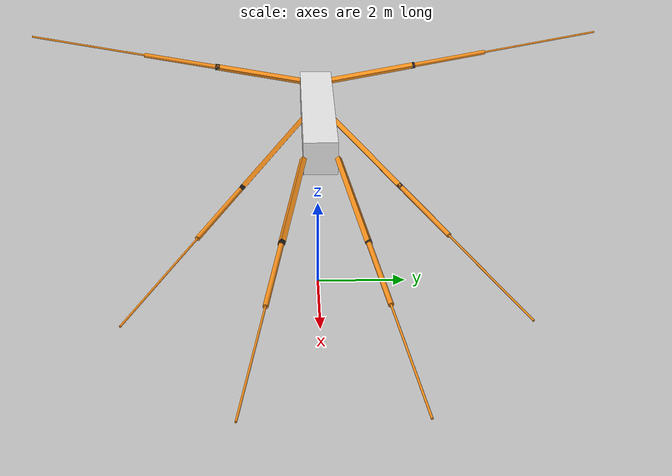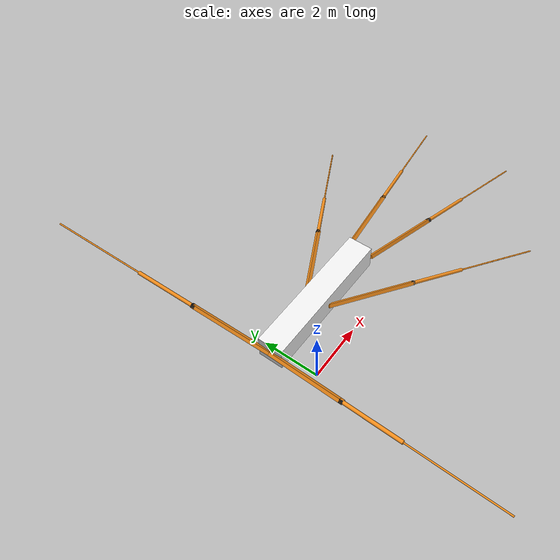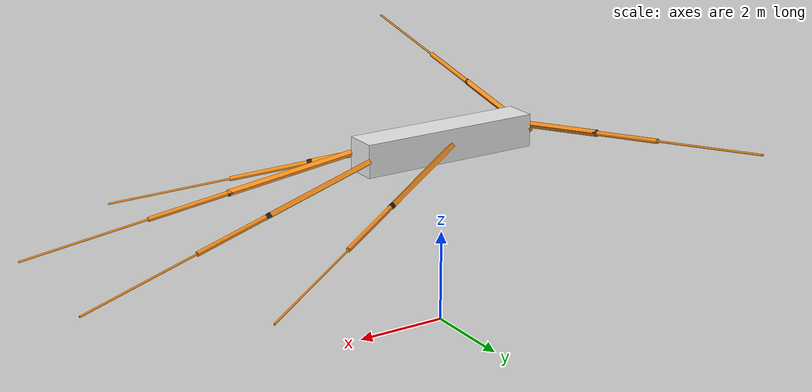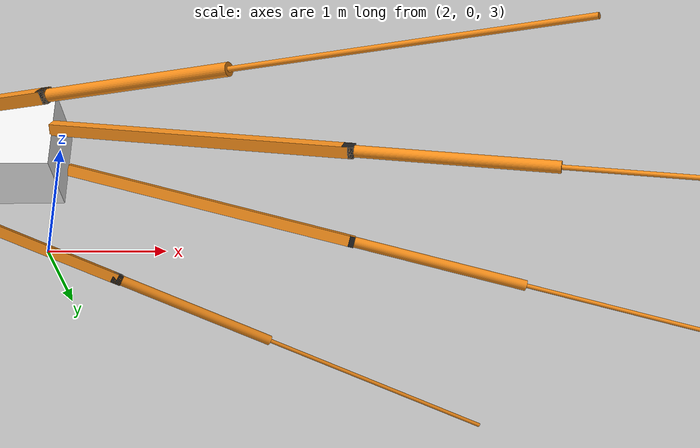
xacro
<?xml version="1.0"?>
<!-- Synthesis of an Ant Leg -->
<robot name="antmodel" xmlns:xacro="http://www.ros.org/wiki/xacro">

  <!-- Constants for robot dimensions -->
  <xacro:property name="PI" value="3.1415926535897931"/>
  <xacro:property name="mass" value="0.024357719" /> <!-- arbitrary value for mass -->
  <xacro:property name="width" value="0.1" /> <!-- Square dimensions (widthxwidth) of beams -->
  <xacro:property name="height1" value="5" /> <!-- Link 1 -->
  <xacro:property name="height2" value="0.1" /> <!-- Link 2 -->
  <xacro:property name="height3" value="0.1" /> <!-- Link 3 -->

  <!-- Base transformation parameters -->
  <xacro:property name="AZ" value="4.0127" /> <!-- -1*min(PZ(:,5)) -->
  <xacro:property name="baseX" value="2.5329" /> <!-- link{1,2}(10,1) -->
  <xacro:property name="baseY" value="0.7012" /> <!-- link{1,2}(10,2) -->
  <xacro:property name="baseZ" value="-0.1418" /> <!-- link{1,2}(10,3) -->
  <xacro:property name="baseLf" value="2.632" /> <!-- norm(link{1,2}(10,:)) -->
  <xacro:property name="baseLm" value="2.632" /> <!-- norm(link{1,2}(10,:)) -->
  <xacro:property name="baseLr" value="2.632" /> <!-- norm(link{1,2}(10,:)) -->

 	<!-- front leg -->
  <xacro:property name="ARF" value="-0.9202" /> <!-- tr2rpy(A{50})(1) --> <!-- Roll Pitch Yaw-->
  <xacro:property name="APF" value="0.1936" /> <!-- tr2rpy(A{50})(2) -->
  <xacro:property name="AYF" value="0.1716" /> <!-- tr2rpy(A{50})(3) -->
 	<!-- middle leg -->
  <xacro:property name="ARM" value="-0.9202" /> <!-- tr2rpy(A{50})(1) -->
  <xacro:property name="APM" value="0.1936" /> <!-- tr2rpy(A{50})(2) -->
  <xacro:property name="AYM" value="0.5" /> <!-- tr2rpy(A{50})(3) -->
 	<!-- rear leg -->
  <xacro:property name="ARR" value="2.5218" /> <!-- tr2rpy(A{50})(1) -->
  <xacro:property name="APR" value="-0.1517" /> <!-- tr2rpy(A{50})(2) -->
  <xacro:property name="AYR" value="-1.6559" /> <!-- tr2rpy(A{50})(3) -->

  <!-- Antleg Parameter -->
  <xacro:property name="femur_len" value="1.70"/> <!-- length of femur segment -->
  <xacro:property name="femur_rad" value="0.05"/> <!-- radius of femur segment -->
  <xacro:property name="tibia_len" value="2.60"/> <!-- length of tibia + tarsus segment -->
  <xacro:property name="tibia_rad" value="0.02"/>

  <!-- Body Parameters -->
  <xacro:property name="body_height" value="0.7" /> <!-- Height of body rectangle -->
  <xacro:property name="body_length" value="4" /> <!-- Length of body rectangle  -->
  <xacro:property name="body_width" value="0.7" /> <!-- Width of body rectangle  -->
  <xacro:property name="body_mass" value="0.97559947" /> <!-- Body mass -->

  <!-- Import all Gazebo-customization elements, including Gazebo colors -->
  <xacro:include filename="$(find antmodel_description)/urdf/antmodel.gazebo" />
  <!-- Import Rviz colors -->
  <xacro:include filename="$(find antmodel_description)/urdf/materials.xacro" />

<!-- to fix body-->
<link name="world" />
<joint name="world_joint"  type="fixed">
    <origin xyz="0 0 ${AZ/2}" rpy="0 0 0" />
    <parent link="world"/>
    <child link="body"/>
</joint>

<link name="body">
    <visual>
      <origin xyz="0 0 ${AZ/2}" rpy="0 0 0"/>
      <geometry>
	<box size="${body_length} ${body_width} ${body_height}"/>
      </geometry>
    </visual>

    <collision>
      <origin xyz="0 0 ${AZ/2}" rpy="0 0 0"/>
      <geometry>
	<box size="${body_length} ${body_width} ${body_height}"/>
      </geometry>
    </collision>

    <inertial>
      <origin xyz="0 0 0" rpy="0 0 0"/>
      <mass value="${body_mass}"/>
<inertia ixx="3.1081800"  ixy="-0.25460189"  ixz="2.0318174" iyy="6.3787776" iyz="0.16417863" izz="5.3316425" />
        </inertial>
  </link>

   <gazebo reference="body">
   <material>Gazebo/White</material>
  </gazebo>

<!-- Leg Macro -->
<xacro:macro name="leg" params="suffix xyz rpy baseL">

 <!-- Base -->
  <link name="base_${suffix}">
    <collision>
      <origin xyz="0 0 ${-AZ/2}" rpy="0 0 0"/>
      <geometry>
	<box size="${width} ${width} ${height1}"/>
      </geometry>
    </collision>

    <visual>
      <origin xyz="${2.632/2} 0 0" rpy="0 0 0"/>
      <geometry>
	<box size="2.632 ${width} ${width}"/>
      </geometry>
      <material name="orange"/>
    </visual>

    <inertial>
      <origin xyz="0 0 ${height1/2}" rpy="0 0 0"/>
      <mass value="${mass}"/>
      <inertia
	  ixx="${mass / 12.0 * (width*width + height1*height1)}" ixy="0.0" ixz="0.0"
	  iyy="${mass / 12.0 * (height1*height1 + width*width)}" iyz="0.0"
	  izz="${mass / 12.0 * (width*width + width*width)}"/>
    </inertial>
  </link>

<!-- Coxa Link -->
  <link name="coxa_${suffix}">
    <collision>
      <origin xyz="0 0 0" rpy="0 0 0"/>
      <geometry>
	<box size="${width} ${width} ${height2}"/>
      </geometry>
    </collision>

    <visual>
      <origin xyz="0 0 0" rpy="0 0 0"/>
      <geometry>
	<box size="${width} ${width} ${height2}"/>
      </geometry>
      <material name="black"/>
    </visual>

    <inertial>
      <origin xyz="0 0 0" rpy="0 0 0"/>
      <mass value="${mass}"/>
    <inertia ixx="0.0051411124"  ixy="-0.00057530255"  ixz="-0.000024729049" iyy="0.0081915737" iyz="-0.000019223094" izz="0.0011379812" />
</inertial>
  </link>

    <!-- Link DOF1 -->
  <link name="link1_${suffix}">
    <collision>
      <origin xyz="0 0 0" rpy="0 0 0"/>
      <geometry>
	<box size="${width} ${width} ${height2}"/>
      </geometry>
    </collision>

    <visual>
      <origin xyz="0 0 0" rpy="0 0 0"/>
      <geometry>
	<box size="${width} ${width} ${height2}"/>
      </geometry>
      <material name="black"/>
    </visual>

    <inertial>
      <origin xyz="0 0 0" rpy="0 0 0"/>
      <mass value="${mass}"/>
    <inertia ixx="0.0051411124"  ixy="-0.00057530255"  ixz="-0.000024729049" iyy="0.0081915737" iyz="-0.000019223094" izz="0.0011379812" />
</inertial>
  </link>

    <!-- Link DOF2 -->
  <link name="link2_${suffix}">
    <collision>
      <origin xyz="0 0 0" rpy="0 0 0"/>
      <geometry>
	<box size="${width} ${width} ${height3}"/>
      </geometry>
    </collision>

    <visual>
      <origin xyz="0 0 0" rpy="0 0 0"/>
      <geometry>
	<box size="${width} ${width} ${height3}"/>
      </geometry>
      <material name="orange"/>
    </visual>

    <inertial>
      <origin xyz="0 0 0" rpy="0 0 0"/>
      <mass value="${mass}"/>
    <inertia ixx="0.0051411124"  ixy="-0.00057530255"  ixz="-0.000024729049" iyy="0.0081915737" iyz="-0.000019223094" izz="0.0011379812" />
</inertial>
  </link>

  <!-- Femur Link -->
  <link name="femur_${suffix}">
    <collision>
      <origin xyz="${femur_len/2} 0 0" rpy="0 ${PI/2} 0"/>
      <geometry>
	<cylinder length="${femur_len}" radius="${femur_rad}"/>
      </geometry>
    </collision>

    <visual>
      <origin xyz="${femur_len/2} 0 0" rpy="0 ${PI/2} 0"/>
      <geometry>
	<cylinder length="${femur_len}" radius="${femur_rad}"/>
      </geometry>
      <material name="orange"/>
    </visual>

    <inertial>
      <origin xyz="${femur_len/2} 0 0" rpy="0 0 0"/>
      <mass value="${mass}"/>
    <inertia ixx="0.0051411124"  ixy="-0.00057530255"  ixz="-0.000024729049" iyy="0.0081915737" iyz="-0.000019223094" izz="0.0011379812" />
</inertial>
  </link>

  <!-- Tibia Link -->
  <link name="tibia_${suffix}">
    <collision>
      <origin xyz="${tibia_len/2} 0 0" rpy="0 ${PI/2} 0"/>
      <geometry>
	<cylinder length="${tibia_len}" radius="${tibia_rad}"/>
      </geometry>
    </collision>

    <visual>
      <origin xyz="${tibia_len/2} 0 0" rpy="0 ${PI/2} 0"/>
      <geometry>
	<cylinder length="${tibia_len}" radius="${tibia_rad}"/>
      </geometry>
      <material name="orange"/>
    </visual>

    <inertial>
      <origin xyz="${tibia_len/2} 0 0" rpy="0 0 0"/>
      <mass value="${mass}"/>
    <inertia ixx="0.0051411124"  ixy="-0.00057530255"  ixz="-0.000024729049" iyy="0.0081915737" iyz="-0.000019223094" izz="0.0011379812" />
</inertial>

<mu1>1</mu1>
<mu2>1</mu2>
  </link>

<joint name="j_body_${suffix}" type="fixed">
        <parent link="body"/>
        <child link="base_${suffix}"/>
	<origin xyz="${xyz}" rpy="${rpy}" />
</joint>

  <!-- Frame {A} -->
  <joint name="A" type="fixed">
    <parent link="base_${suffix}"/>
    <child link="coxa_${suffix}"/>
    <origin xyz="${baseL} 0 0"/>
  </joint>

  <!-- DOF1 = q1 -->
  <joint name="joint1_${suffix}" type="continuous">
    <parent link="coxa_${suffix}"/>
    <child link="link1_${suffix}"/>
    <origin xyz="0 0 0" rpy="0 0 0"/>
    <axis xyz="0 0 1"/>
    <dynamics damping="0.7"/>
  </joint>

  <!-- DOF2 = q2 -->
  <joint name="joint2_${suffix}" type="continuous">
    <parent link="link1_${suffix}"/>
    <child link="link2_${suffix}"/>
    <origin xyz="0 0 0" rpy="${-PI/2} 0 0"/>
    <axis xyz="0 0 1"/>
    <dynamics damping="0.7"/>
  </joint>

  <!-- DOF3 = q3 -->
  <joint name="joint3_${suffix}" type="continuous">
    <parent link="link2_${suffix}"/>
    <child link="femur_${suffix}"/>
    <origin xyz="0 0 0" rpy="${PI/2} 0 0"/>
    <axis xyz="0 0 1"/>
    <dynamics damping="0.7"/>
  </joint>

  <!-- DOF4 = q4 -->
  <joint name="joint4_${suffix}" type="continuous">
    <parent link="femur_${suffix}"/>
    <child link="tibia_${suffix}"/>
    <origin xyz="${femur_len} 0 0" rpy="0 0 0"/>
    <axis xyz="0 0 1"/>
    <dynamics damping="0.7"/>
  </joint>

  <gazebo reference="coxa_${suffix}">
    <material>Gazebo/Blue</material>
  </gazebo>
   <gazebo reference="femur_${suffix}">
    <material>Gazebo/Green</material>
  </gazebo>
   <gazebo reference="link1_${suffix}">
    <material>Gazebo/Orange</material>
  </gazebo>
   <gazebo reference="link2_${suffix}">
    <material>Gazebo/Red</material>
  </gazebo>

  <!-- Transmission to ROS -->
  <transmission name="tran1_${suffix}">
    <type>transmission_interface/SimpleTransmission</type>
    <joint name="joint1_${suffix}">
      <hardwareInterface>EffortJointInterface</hardwareInterface>
    </joint>
    <actuator name="motor1_${suffix}">
      <hardwareInterface>EffortJointInterface</hardwareInterface>
      <mechanicalReduction>1</mechanicalReduction>
    </actuator>
  </transmission>

  <transmission name="tran2_${suffix}">
    <type>transmission_interface/SimpleTransmission</type>
    <joint name="joint2_${suffix}">
      <hardwareInterface>EffortJointInterface</hardwareInterface>
    </joint>
    <actuator name="motor2_${suffix}">
      <hardwareInterface>EffortJointInterface</hardwareInterface>
      <mechanicalReduction>1</mechanicalReduction>
    </actuator>
  </transmission>

  <transmission name="tran3_${suffix}">
    <type>transmission_interface/SimpleTransmission</type>
    <joint name="joint3_${suffix}">
      <hardwareInterface>EffortJointInterface</hardwareInterface>
    </joint>
    <actuator name="motor3_${suffix}">
      <hardwareInterface>EffortJointInterface</hardwareInterface>
      <mechanicalReduction>1</mechanicalReduction>
    </actuator>
  </transmission>
  <transmission name="tran4_${suffix}">
    <type>transmission_interface/SimpleTransmission</type>
    <joint name="joint4_${suffix}">
      <hardwareInterface>EffortJointInterface</hardwareInterface>
    </joint>
    <actuator name="motor4_${suffix}">
      <hardwareInterface>EffortJointInterface</hardwareInterface>
      <mechanicalReduction>1</mechanicalReduction>
    </actuator>
  </transmission>

</xacro:macro>

<xacro:leg suffix="lf" xyz="${body_length/2} ${body_width/2} ${AZ/2}" rpy="${ARF} ${APF} ${AYF}" baseL = "${baseLf}"/>
<xacro:leg suffix="lm" xyz="0 ${body_width/2} ${AZ/2}" rpy="${ARM} ${APM} ${AYM}" baseL = "${baseLm}"/>
<xacro:leg suffix="lr" xyz="${-body_length/2} ${body_width/2} ${AZ/2}" rpy="${ARR} ${APR} ${AYR}" baseL = "${baseLr}"/>

<xacro:leg suffix="rf" xyz="${body_length/2} ${-body_width/2} ${AZ/2}" rpy="${PI-ARF} ${APF} ${-AYF}" baseL = "${baseLf}"/>
<xacro:leg suffix="rm" xyz="0 ${-body_width/2} ${AZ/2}" rpy="${PI-ARM} ${APM} ${-AYM}" baseL = "${baseLm}"/>
<xacro:leg suffix="rr" xyz="${-body_length/2} ${-body_width/2} ${AZ/2}" rpy="${PI-ARR} ${APR} ${-AYR}" baseL = "${baseLr}"/>

</robot>
